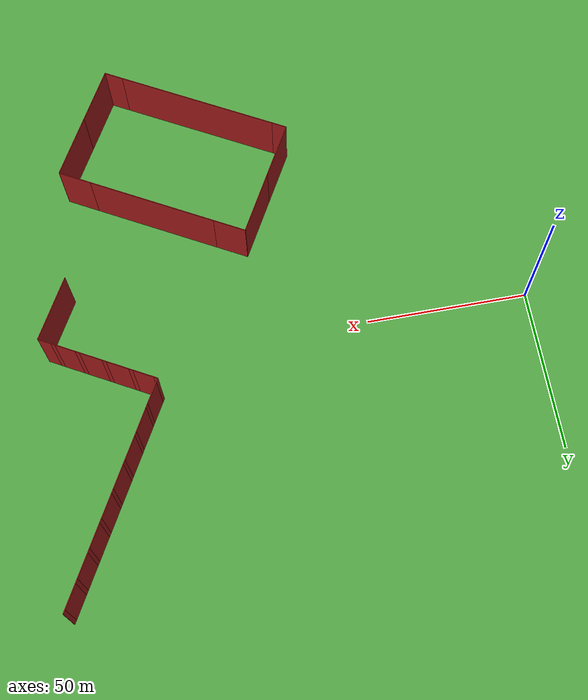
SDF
<sdf version="1.4">
 <world name="default">
  <model name="ground">
   <static>true</static>
   <link name="link">
    <collision name="collision">
     <geometry><plane><size>10000 10000</size><normal>0 0 1</normal></plane></geometry>
     <surface><friction><ode><mu>100</mu><mu2>50</mu2></ode></friction></surface>
    </collision>
    <visual name="visual">
     <pose>0 0 -1 0 0 0</pose>
     <geometry><plane><normal>0 0 1</normal><size>10000 10000</size></plane></geometry>
     <material>
      <script><uri>file://media/materials/scripts/gazebo.material</uri><name>Gazebo/Grass</name></script>
     </material>
    </visual>
   </link>
  </model>
  <include><uri>model://sun</uri></include>
  <model name="Time-Life Building">
   <static>true</static>
   <pose>133.247665459 27.8378512148 0.0 0 0 0</pose>
   <link name="Time-Life Building_0">
    <collision name="Time-Life Building_0">
     <geometry><box><size>1.32923246951 0.2 20.0</size></box></geometry>
    </collision>
    <visual name="Time-Life Building_0">
     <geometry><box><size>1.32923246951 0.2 20.0</size></box></geometry>
     <material>
      <script><uri>file://media/materials/scripts/gazebo.material</uri><name>Gazebo/Red</name></script>
     </material>
    </visual>
    <pose>16.5434005203 47.1384278914 9.0 0 0 1.06420550392</pose>
   </link>
   <link name="Time-Life Building_1">
    <collision name="Time-Life Building_1">
     <geometry><box><size>7.48111101562 0.2 20.0</size></box></geometry>
    </collision>
    <visual name="Time-Life Building_1">
     <geometry><box><size>7.48111101562 0.2 20.0</size></box></geometry>
     <material>
      <script><uri>file://media/materials/scripts/gazebo.material</uri><name>Gazebo/Red</name></script>
     </material>
    </visual>
    <pose>14.4084205477 43.2851958384 9.0 0 0 1.06494074451</pose>
   </link>
   <link name="Time-Life Building_2">
    <collision name="Time-Life Building_2">
     <geometry><box><size>1.31648542399 0.2 20.0</size></box></geometry>
    </collision>
    <visual name="Time-Life Building_2">
     <geometry><box><size>1.31648542399 0.2 20.0</size></box></geometry>
     <material>
      <script><uri>file://media/materials/scripts/gazebo.material</uri><name>Gazebo/Red</name></script>
     </material>
    </visual>
    <pose>12.2790009652 39.43617427 9.0 0 0 1.06848828753</pose>
   </link>
   <link name="Time-Life Building_3">
    <collision name="Time-Life Building_3">
     <geometry><box><size>7.47914735165 0.2 20.0</size></box></geometry>
    </collision>
    <visual name="Time-Life Building_3">
     <geometry><box><size>7.47914735165 0.2 20.0</size></box></geometry>
     <material>
      <script><uri>file://media/materials/scripts/gazebo.material</uri><name>Gazebo/Red</name></script>
     </material>
    </visual>
    <pose>10.1440250787 35.5913601826 9.0 0 0 1.06309582887</pose>
   </link>
   <link name="Time-Life Building_4">
    <collision name="Time-Life Building_4">
     <geometry><box><size>1.31648600865 0.2 20.0</size></box></geometry>
    </collision>
    <visual name="Time-Life Building_4">
     <geometry><box><size>1.31648600865 0.2 20.0</size></box></geometry>
     <material>
      <script><uri>file://media/materials/scripts/gazebo.material</uri><name>Gazebo/Red</name></script>
     </material>
    </visual>
    <pose>8.00904979308 31.7465454316 9.0 0 0 1.06848957315</pose>
   </link>
   <link name="Time-Life Building_5">
    <collision name="Time-Life Building_5">
     <geometry><box><size>7.49585734438 0.2 20.0</size></box></geometry>
    </collision>
    <visual name="Time-Life Building_5">
     <geometry><box><size>7.49585734438 0.2 20.0</size></box></geometry>
     <material>
      <script><uri>file://media/materials/scripts/gazebo.material</uri><name>Gazebo/Red</name></script>
     </material>
    </visual>
    <pose>5.8796375635 27.8890932282 9.0 0 0 1.06603220093</pose>
   </link>
   <link name="Time-Life Building_6">
    <collision name="Time-Life Building_6">
     <geometry><box><size>1.32187590324 0.2 20.0</size></box></geometry>
    </collision>
    <visual name="Time-Life Building_6">
     <geometry><box><size>1.32187590324 0.2 20.0</size></box></geometry>
     <material>
      <script><uri>file://media/materials/scripts/gazebo.material</uri><name>Gazebo/Red</name></script>
     </material>
    </visual>
    <pose>3.7446661895 24.0316404007 9.0 0 0 1.06111794173</pose>
   </link>
   <link name="Time-Life Building_7">
    <collision name="Time-Life Building_7">
     <geometry><box><size>7.48651516969 0.2 20.0</size></box></geometry>
    </collision>
    <visual name="Time-Life Building_7">
     <geometry><box><size>7.48651516969 0.2 20.0</size></box></geometry>
     <material>
      <script><uri>file://media/materials/scripts/gazebo.material</uri><name>Gazebo/Red</name></script>
     </material>
    </visual>
    <pose>1.60413854449 20.1826062465 9.0 0 0 1.06364534202</pose>
   </link>
   <link name="Time-Life Building_8">
    <collision name="Time-Life Building_8">
     <geometry><box><size>1.31648717643 0.2 20.0</size></box></geometry>
    </collision>
    <visual name="Time-Life Building_8">
     <geometry><box><size>1.31648717643 0.2 20.0</size></box></geometry>
     <material>
      <script><uri>file://media/materials/scripts/gazebo.material</uri><name>Gazebo/Red</name></script>
     </material>
    </visual>
    <pose>-0.530828753429 16.3335713894 9.0 0 0 1.06849214501</pose>
   </link>
   <link name="Time-Life Building_9">
    <collision name="Time-Life Building_9">
     <geometry><box><size>7.48651847286 0.2 20.0</size></box></geometry>
    </collision>
    <visual name="Time-Life Building_9">
     <geometry><box><size>7.48651847286 0.2 20.0</size></box></geometry>
     <material>
      <script><uri>file://media/materials/scripts/gazebo.material</uri><name>Gazebo/Red</name></script>
     </material>
    </visual>
    <pose>-2.66579264316 12.4845327493 9.0 0 0 1.06364662876</pose>
   </link>
   <link name="Time-Life Building_10">
    <collision name="Time-Life Building_10">
     <geometry><box><size>1.31648776103 0.2 20.0</size></box></geometry>
    </collision>
    <visual name="Time-Life Building_10">
     <geometry><box><size>1.31648776103 0.2 20.0</size></box></geometry>
     <material>
      <script><uri>file://media/materials/scripts/gazebo.material</uri><name>Gazebo/Red</name></script>
     </material>
    </visual>
    <pose>-4.80075593236 8.63549344577 9.0 0 0 1.06849342981</pose>
   </link>
   <link name="Time-Life Building_11">
    <collision name="Time-Life Building_11">
     <geometry><box><size>7.49388524187 0.2 20.0</size></box></geometry>
    </collision>
    <visual name="Time-Life Building_11">
     <geometry><box><size>7.49388524187 0.2 20.0</size></box></geometry>
     <material>
      <script><uri>file://media/materials/scripts/gazebo.material</uri><name>Gazebo/Red</name></script>
     </material>
    </visual>
    <pose>-6.93571583034 4.7822391393 9.0 0 0 1.06419377872</pose>
   </link>
   <link name="Time-Life Building_12">
    <collision name="Time-Life Building_12">
     <geometry><box><size>1.31648834429 0.2 20.0</size></box></geometry>
    </collision>
    <visual name="Time-Life Building_12">
     <geometry><box><size>1.31648834429 0.2 20.0</size></box></geometry>
     <material>
      <script><uri>file://media/materials/scripts/gazebo.material</uri><name>Gazebo/Red</name></script>
     </material>
    </visual>
    <pose>-9.07067512678 0.92898416969 9.0 0 0 1.0684947158</pose>
   </link>
   <link name="Time-Life Building_13">
    <collision name="Time-Life Building_13">
     <geometry><box><size>7.48849962328 0.2 20.0</size></box></geometry>
    </collision>
    <visual name="Time-Life Building_13">
     <geometry><box><size>7.48849962328 0.2 20.0</size></box></geometry>
     <material>
      <script><uri>file://media/materials/scripts/gazebo.material</uri><name>Gazebo/Red</name></script>
     </material>
    </visual>
    <pose>-11.200071261 -2.92427460444 9.0 0 0 1.06549344239</pose>
   </link>
   <link name="Time-Life Building_14">
    <collision name="Time-Life Building_14">
     <geometry><box><size>1.32387723038 0.2 20.0</size></box></geometry>
    </collision>
    <visual name="Time-Life Building_14">
     <geometry><box><size>1.32387723038 0.2 20.0</size></box></geometry>
     <material>
      <script><uri>file://media/materials/scripts/gazebo.material</uri><name>Gazebo/Red</name></script>
     </material>
    </visual>
    <pose>-13.329466805 -6.78174526381 9.0 0 0 1.07155890913</pose>
   </link>
   <link name="Time-Life Building_15">
    <collision name="Time-Life Building_15">
     <geometry><box><size>6.82190994577 0.2 20.0</size></box></geometry>
    </collision>
    <visual name="Time-Life Building_15">
     <geometry><box><size>6.82190994577 0.2 20.0</size></box></geometry>
     <material>
      <script><uri>file://media/materials/scripts/gazebo.material</uri><name>Gazebo/Red</name></script>
     </material>
    </visual>
    <pose>-15.303185465 -10.344434367 9.0 0 0 1.06359543113</pose>
   </link>
   <link name="Time-Life Building_16">
    <collision name="Time-Life Building_16">
     <geometry><box><size>1.32187876863 0.2 20.0</size></box></geometry>
    </collision>
    <visual name="Time-Life Building_16">
     <geometry><box><size>1.32187876863 0.2 20.0</size></box></geometry>
     <material>
      <script><uri>file://media/materials/scripts/gazebo.material</uri><name>Gazebo/Red</name></script>
     </material>
    </visual>
    <pose>-17.2824633035 -13.9029128519 9.0 0 0 1.06112428561</pose>
   </link>
   <link name="Time-Life Building_17">
    <collision name="Time-Life Building_17">
     <geometry><box><size>1.31204628246 0.2 20.0</size></box></geometry>
    </collision>
    <visual name="Time-Life Building_17">
     <geometry><box><size>1.31204628246 0.2 20.0</size></box></geometry>
     <material>
      <script><uri>file://media/materials/scripts/gazebo.material</uri><name>Gazebo/Red</name></script>
     </material>
    </visual>
    <pose>-17.0322763705 -14.7999038375 9.0 0 0 2.63194471559</pose>
   </link>
   <link name="Time-Life Building_18">
    <collision name="Time-Life Building_18">
     <geometry><box><size>6.42775355637 0.2 20.0</size></box></geometry>
    </collision>
    <visual name="Time-Life Building_18">
     <geometry><box><size>6.42775355637 0.2 20.0</size></box></geometry>
     <material>
      <script><uri>file://media/materials/scripts/gazebo.material</uri><name>Gazebo/Red</name></script>
     </material>
    </visual>
    <pose>-13.6463937657 -16.673902756 9.0 0 0 2.63693128562</pose>
   </link>
   <link name="Time-Life Building_19">
    <collision name="Time-Life Building_19">
     <geometry><box><size>1.3217635268 0.2 20.0</size></box></geometry>
    </collision>
    <visual name="Time-Life Building_19">
     <geometry><box><size>1.3217635268 0.2 20.0</size></box></geometry>
     <material>
      <script><uri>file://media/materials/scripts/gazebo.material</uri><name>Gazebo/Red</name></script>
     </material>
    </visual>
    <pose>-10.2549512524 -18.5479010977 9.0 0 0 2.63604987267</pose>
   </link>
   <link name="Time-Life Building_20">
    <collision name="Time-Life Building_20">
     <geometry><box><size>7.05536742302 0.2 20.0</size></box></geometry>
    </collision>
    <visual name="Time-Life Building_20">
     <geometry><box><size>7.05536742302 0.2 20.0</size></box></geometry>
     <material>
      <script><uri>file://media/materials/scripts/gazebo.material</uri><name>Gazebo/Red</name></script>
     </material>
    </visual>
    <pose>-6.59108050139 -20.5777117792 9.0 0 0 2.63560847997</pose>
   </link>
   <link name="Time-Life Building_21">
    <collision name="Time-Life Building_21">
     <geometry><box><size>1.31204568618 0.2 20.0</size></box></geometry>
    </collision>
    <visual name="Time-Life Building_21">
     <geometry><box><size>1.31204568618 0.2 20.0</size></box></geometry>
     <material>
      <script><uri>file://media/materials/scripts/gazebo.material</uri><name>Gazebo/Red</name></script>
     </material>
    </visual>
    <pose>-2.93276932113 -22.6075218222 9.0 0 0 2.63194658397</pose>
   </link>
   <link name="Time-Life Building_22">
    <collision name="Time-Life Building_22">
     <geometry><box><size>7.06917433792 0.2 20.0</size></box></geometry>
    </collision>
    <visual name="Time-Life Building_22">
     <geometry><box><size>7.06917433792 0.2 20.0</size></box></geometry>
     <material>
      <script><uri>file://media/materials/scripts/gazebo.material</uri><name>Gazebo/Red</name></script>
     </material>
    </visual>
    <pose>0.731102544268 -24.6415396904 9.0 0 0 2.63532966755</pose>
   </link>
   <link name="Time-Life Building_23">
    <collision name="Time-Life Building_23">
     <geometry><box><size>1.3177047012 0.2 20.0</size></box></geometry>
    </collision>
    <visual name="Time-Life Building_23">
     <geometry><box><size>1.3177047012 0.2 20.0</size></box></geometry>
     <material>
      <script><uri>file://media/materials/scripts/gazebo.material</uri><name>Gazebo/Red</name></script>
     </material>
    </visual>
    <pose>4.40053433287 -26.6713457161 9.0 0 0 2.64164405335</pose>
   </link>
   <link name="Time-Life Building_24">
    <collision name="Time-Life Building_24">
     <geometry><box><size>6.408291557 0.2 20.0</size></box></geometry>
    </collision>
    <visual name="Time-Life Building_24">
     <geometry><box><size>6.408291557 0.2 20.0</size></box></geometry>
     <material>
      <script><uri>file://media/materials/scripts/gazebo.material</uri><name>Gazebo/Red</name></script>
     </material>
    </visual>
    <pose>7.78086020072 -28.541122556 9.0 0 0 2.63525617529</pose>
   </link>
   <link name="Time-Life Building_25">
    <collision name="Time-Life Building_25">
     <geometry><box><size>1.31617464383 0.2 20.0</size></box></geometry>
    </collision>
    <visual name="Time-Life Building_25">
     <geometry><box><size>1.31617464383 0.2 20.0</size></box></geometry>
     <material>
      <script><uri>file://media/materials/scripts/gazebo.material</uri><name>Gazebo/Red</name></script>
     </material>
    </visual>
    <pose>11.1556264855 -30.4193212303 9.0 0 0 2.62636248061</pose>
   </link>
   <link name="Time-Life Building_26">
    <collision name="Time-Life Building_26">
     <geometry><box><size>4.08705767543 0.2 20.0</size></box></geometry>
    </collision>
    <visual name="Time-Life Building_26">
     <geometry><box><size>4.08705767543 0.2 20.0</size></box></geometry>
     <material>
      <script><uri>file://media/materials/scripts/gazebo.material</uri><name>Gazebo/Red</name></script>
     </material>
    </visual>
    <pose>13.5185193088 -31.729005225 9.0 0 0 2.63841076283</pose>
   </link>
   <link name="Time-Life Building_27">
    <collision name="Time-Life Building_27">
     <geometry><box><size>20.6801956896 0.2 20.0</size></box></geometry>
    </collision>
    <visual name="Time-Life Building_27">
     <geometry><box><size>20.6801956896 0.2 20.0</size></box></geometry>
     <material>
      <script><uri>file://media/materials/scripts/gazebo.material</uri><name>Gazebo/Red</name></script>
     </material>
    </visual>
    <pose>10.2994437395 -41.7601101072 9.0 0 0 1.06505599978</pose>
   </link>
  </model>
  <model name="1270 Avenue of the Americas">
   <static>true</static>
   <pose>97.0299755521 -60.4579858294 0.0 0 0 0</pose>
   <link name="1270 Avenue of the Americas_0">
    <collision name="1270 Avenue of the Americas_0">
     <geometry><box><size>17.6389824148 0.2 20.0</size></box></geometry>
    </collision>
    <visual name="1270 Avenue of the Americas_0">
     <geometry><box><size>17.6389824148 0.2 20.0</size></box></geometry>
     <material>
      <script><uri>file://media/materials/scripts/gazebo.material</uri><name>Gazebo/Red</name></script>
     </material>
    </visual>
    <pose>-28.0889182695 6.2549795323 9.0 0 0 -2.07761268238</pose>
   </link>
   <link name="1270 Avenue of the Americas_1">
    <collision name="1270 Avenue of the Americas_1">
     <geometry><box><size>20.2022234983 0.2 20.0</size></box></geometry>
    </collision>
    <visual name="1270 Avenue of the Americas_1">
     <geometry><box><size>20.2022234983 0.2 20.0</size></box></geometry>
     <material>
      <script><uri>file://media/materials/scripts/gazebo.material</uri><name>Gazebo/Red</name></script>
     </material>
    </visual>
    <pose>-18.9043188705 22.7968158782 9.0 0 0 -2.07768167758</pose>
   </link>
   <link name="1270 Avenue of the Americas_2">
    <collision name="1270 Avenue of the Americas_2">
     <geometry><box><size>10.2989116541 0.2 20.0</size></box></geometry>
    </collision>
    <visual name="1270 Avenue of the Americas_2">
     <geometry><box><size>10.2989116541 0.2 20.0</size></box></geometry>
     <material>
      <script><uri>file://media/materials/scripts/gazebo.material</uri><name>Gazebo/Red</name></script>
     </material>
    </visual>
    <pose>-9.49726248823 29.1305756194 9.0 0 0 2.63528279154</pose>
   </link>
   <link name="1270 Avenue of the Americas_3">
    <collision name="1270 Avenue of the Americas_3">
     <geometry><box><size>40.3285795911 0.2 20.0</size></box></geometry>
    </collision>
    <visual name="1270 Avenue of the Americas_3">
     <geometry><box><size>40.3285795911 0.2 20.0</size></box></geometry>
     <material>
      <script><uri>file://media/materials/scripts/gazebo.material</uri><name>Gazebo/Red</name></script>
     </material>
    </visual>
    <pose>12.6361559904 16.8465419874 9.0 0 0 2.63482640831</pose>
   </link>
   <link name="1270 Avenue of the Americas_4">
    <collision name="1270 Avenue of the Americas_4">
     <geometry><box><size>10.3403256279 0.2 20.0</size></box></geometry>
    </collision>
    <visual name="1270 Avenue of the Americas_4">
     <geometry><box><size>10.3403256279 0.2 20.0</size></box></geometry>
     <material>
      <script><uri>file://media/materials/scripts/gazebo.material</uri><name>Gazebo/Red</name></script>
     </material>
    </visual>
    <pose>34.7862621088 4.54990477644 9.0 0 0 2.63471615429</pose>
   </link>
   <link name="1270 Avenue of the Americas_5">
    <collision name="1270 Avenue of the Americas_5">
     <geometry><box><size>20.061241068 0.2 20.0</size></box></geometry>
    </collision>
    <visual name="1270 Avenue of the Americas_5">
     <geometry><box><size>20.061241068 0.2 20.0</size></box></geometry>
     <material>
      <script><uri>file://media/materials/scripts/gazebo.material</uri><name>Gazebo/Red</name></script>
     </material>
    </visual>
    <pose>34.4416565617 -6.73194908575 9.0 0 0 1.06445056213</pose>
   </link>
   <link name="1270 Avenue of the Americas_6">
    <collision name="1270 Avenue of the Americas_6">
     <geometry><box><size>17.7743609717 0.2 20.0</size></box></geometry>
    </collision>
    <visual name="1270 Avenue of the Americas_6">
     <geometry><box><size>17.7743609717 0.2 20.0</size></box></geometry>
     <material>
      <script><uri>file://media/materials/scripts/gazebo.material</uri><name>Gazebo/Red</name></script>
     </material>
    </visual>
    <pose>25.2626831253 -23.2737028297 9.0 0 0 1.06391936764</pose>
   </link>
   <link name="1270 Avenue of the Americas_7">
    <collision name="1270 Avenue of the Americas_7">
     <geometry><box><size>5.91467925501 0.2 20.0</size></box></geometry>
    </collision>
    <visual name="1270 Avenue of the Americas_7">
     <geometry><box><size>5.91467925501 0.2 20.0</size></box></geometry>
     <material>
      <script><uri>file://media/materials/scripts/gazebo.material</uri><name>Gazebo/Red</name></script>
     </material>
    </visual>
    <pose>18.3631084469 -29.6074565098 9.0 0 0 -0.507015231067</pose>
   </link>
   <link name="1270 Avenue of the Americas_8">
    <collision name="1270 Avenue of the Americas_8">
     <geometry><box><size>50.4464401351 0.2 20.0</size></box></geometry>
    </collision>
    <visual name="1270 Avenue of the Americas_8">
     <geometry><box><size>50.4464401351 0.2 20.0</size></box></geometry>
     <material>
      <script><uri>file://media/materials/scripts/gazebo.material</uri><name>Gazebo/Red</name></script>
     </material>
    </visual>
    <pose>-6.2778312765 -15.9338315735 9.0 0 0 -0.506561174169</pose>
   </link>
   <link name="1270 Avenue of the Americas_9">
    <collision name="1270 Avenue of the Americas_9">
     <geometry><box><size>4.61645518628 0.2 20.0</size></box></geometry>
    </collision>
    <visual name="1270 Avenue of the Americas_9">
     <geometry><box><size>4.61645518628 0.2 20.0</size></box></geometry>
     <material>
      <script><uri>file://media/materials/scripts/gazebo.material</uri><name>Gazebo/Red</name></script>
     </material>
    </visual>
    <pose>-30.3516689286 -2.57602674533 9.0 0 0 -0.506702702561</pose>
   </link>
  </model>
 </world>
</sdf>
